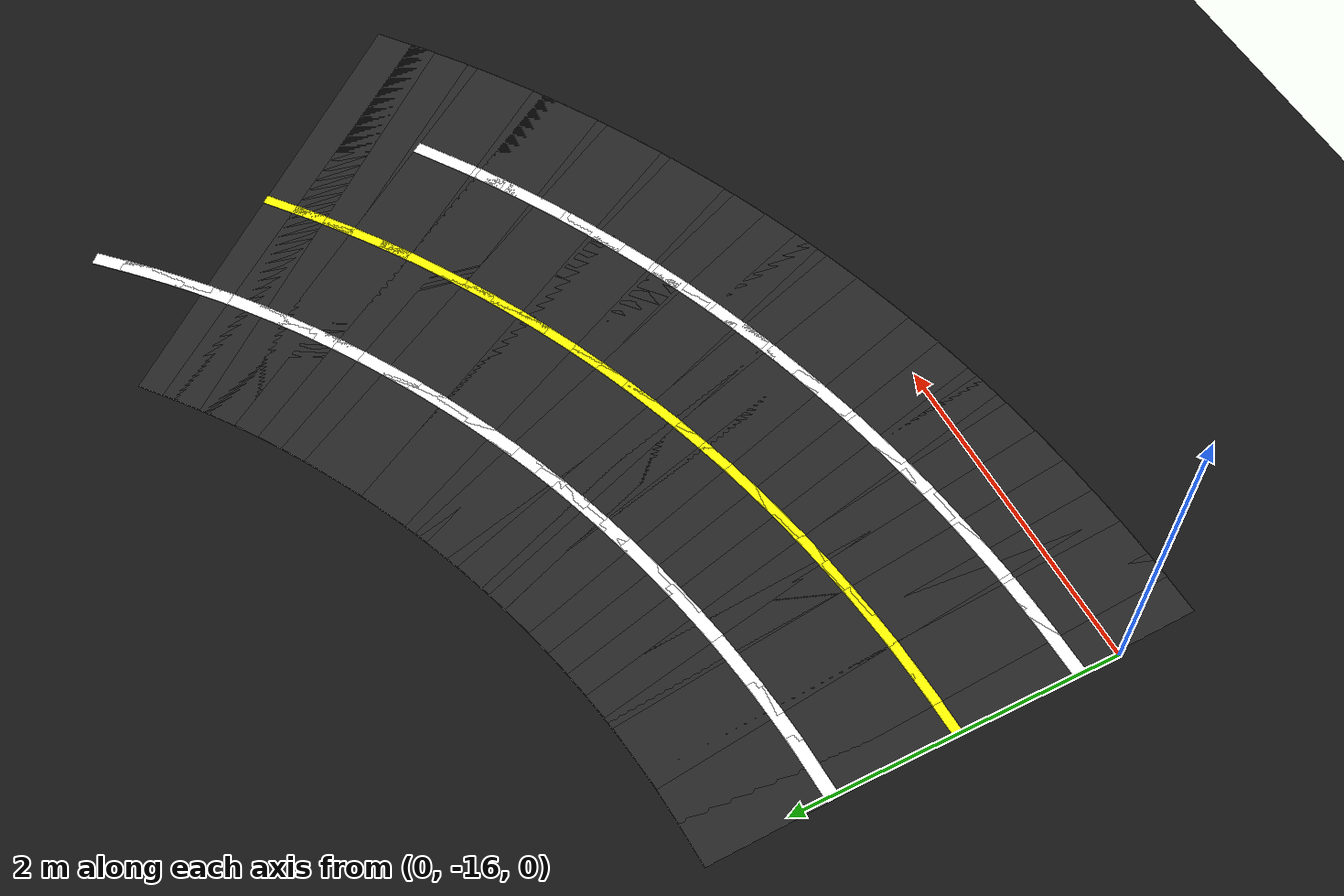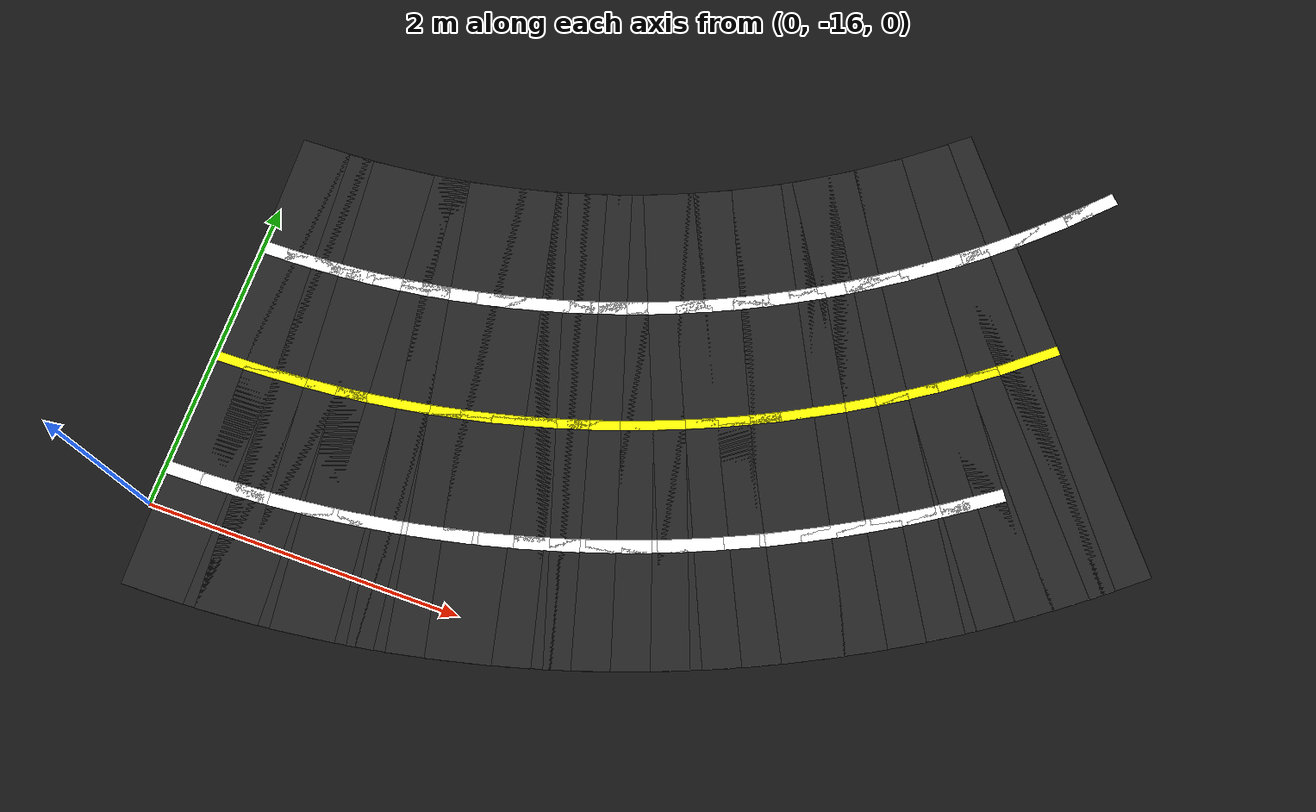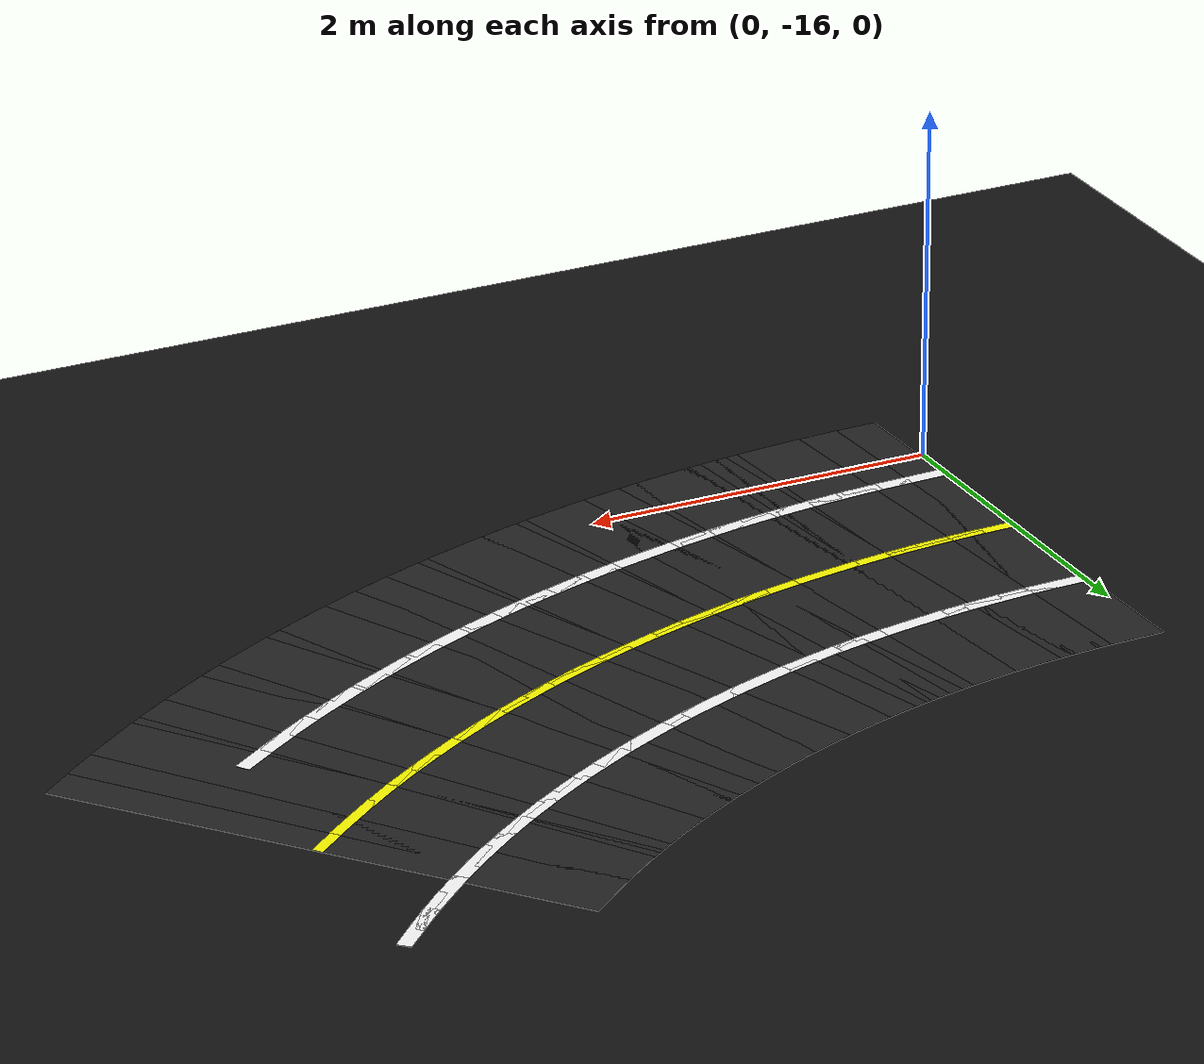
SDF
<sdf version="1.6">
 <world name="figure8_world">
  <model name="ground_plane">
   <static>true</static>
   <link name="link">
    <collision name="collision">
     <geometry><plane><normal>0 0 1</normal><size>120 120</size></plane></geometry>
    </collision>
    <visual name="visual">
     <geometry><plane><normal>0 0 1</normal><size>120 120</size></plane></geometry>
     <material><ambient>0.08 0.08 0.08 1</ambient><diffuse>0.08 0.08 0.08 1</diffuse></material>
    </visual>
   </link>
  </model>
  <model name="seg_00878">
   <static>true</static>
   <pose>4.7730 -12.2730 0.0030 0 0 -2.3562</pose>
   <link name="link">
    <collision name="collision"><geometry><box><size>0.4000 0.0800 0.002</size></box></geometry></collision>
    <visual name="visual">
     <geometry><box><size>0.4000 0.0800 0.002</size></box></geometry>
     <material><ambient>1 1 1 1</ambient><diffuse>1 1 1 1</diffuse></material>
    </visual>
   </link>
  </model>
  <model name="seg_00882">
   <static>true</static>
   <pose>4.6464 -12.3963 0.0030 0 0 -2.3824</pose>
   <link name="link">
    <collision name="collision"><geometry><box><size>0.4000 0.0800 0.002</size></box></geometry></collision>
    <visual name="visual">
     <geometry><box><size>0.4000 0.0800 0.002</size></box></geometry>
     <material><ambient>1 1 1 1</ambient><diffuse>1 1 1 1</diffuse></material>
    </visual>
   </link>
  </model>
  <model name="seg_00886">
   <static>true</static>
   <pose>4.5166 -12.5162 0.0030 0 0 -2.4086</pose>
   <link name="link">
    <collision name="collision"><geometry><box><size>0.4000 0.0800 0.002</size></box></geometry></collision>
    <visual name="visual">
     <geometry><box><size>0.4000 0.0800 0.002</size></box></geometry>
     <material><ambient>1 1 1 1</ambient><diffuse>1 1 1 1</diffuse></material>
    </visual>
   </link>
  </model>
  <model name="seg_00890">
   <static>true</static>
   <pose>4.3838 -12.6327 0.0030 0 0 -2.4347</pose>
   <link name="link">
    <collision name="collision"><geometry><box><size>0.4000 0.0800 0.002</size></box></geometry></collision>
    <visual name="visual">
     <geometry><box><size>0.4000 0.0800 0.002</size></box></geometry>
     <material><ambient>1 1 1 1</ambient><diffuse>1 1 1 1</diffuse></material>
    </visual>
   </link>
  </model>
  <model name="seg_00892">
   <static>true</static>
   <pose>4.7199 -13.3286 0.0010 0 0 -2.4609</pose>
   <link name="link">
    <collision name="collision"><geometry><box><size>0.4000 3.0000 0.002</size></box></geometry></collision>
    <visual name="visual">
     <geometry><box><size>0.4000 3.0000 0.002</size></box></geometry>
     <material><ambient>0.14 0.14 0.14 1</ambient><diffuse>0.14 0.14 0.14 1</diffuse></material>
    </visual>
   </link>
  </model>
  <model name="seg_00894">
   <static>true</static>
   <pose>4.2479 -12.7457 0.0030 0 0 -2.4609</pose>
   <link name="link">
    <collision name="collision"><geometry><box><size>0.4000 0.0800 0.002</size></box></geometry></collision>
    <visual name="visual">
     <geometry><box><size>0.4000 0.0800 0.002</size></box></geometry>
     <material><ambient>1 1 1 1</ambient><diffuse>1 1 1 1</diffuse></material>
    </visual>
   </link>
  </model>
  <model name="seg_00895">
   <static>true</static>
   <pose>4.7199 -13.3286 0.0030 0 0 -2.4609</pose>
   <link name="link">
    <collision name="collision"><geometry><box><size>0.4000 0.0600 0.002</size></box></geometry></collision>
    <visual name="visual">
     <geometry><box><size>0.4000 0.0600 0.002</size></box></geometry>
     <material><ambient>1 1 0 1</ambient><diffuse>1 1 0 1</diffuse></material>
    </visual>
   </link>
  </model>
  <model name="seg_00896">
   <static>true</static>
   <pose>4.5657 -13.4502 0.0010 0 0 -2.4871</pose>
   <link name="link">
    <collision name="collision"><geometry><box><size>0.4000 3.0000 0.002</size></box></geometry></collision>
    <visual name="visual">
     <geometry><box><size>0.4000 3.0000 0.002</size></box></geometry>
     <material><ambient>0.14 0.14 0.14 1</ambient><diffuse>0.14 0.14 0.14 1</diffuse></material>
    </visual>
   </link>
  </model>
  <model name="seg_00898">
   <static>true</static>
   <pose>4.1091 -12.8551 0.0030 0 0 -2.4871</pose>
   <link name="link">
    <collision name="collision"><geometry><box><size>0.4000 0.0800 0.002</size></box></geometry></collision>
    <visual name="visual">
     <geometry><box><size>0.4000 0.0800 0.002</size></box></geometry>
     <material><ambient>1 1 1 1</ambient><diffuse>1 1 1 1</diffuse></material>
    </visual>
   </link>
  </model>
  <model name="seg_00899">
   <static>true</static>
   <pose>4.5657 -13.4502 0.0030 0 0 -2.4871</pose>
   <link name="link">
    <collision name="collision"><geometry><box><size>0.4000 0.0600 0.002</size></box></geometry></collision>
    <visual name="visual">
     <geometry><box><size>0.4000 0.0600 0.002</size></box></geometry>
     <material><ambient>1 1 0 1</ambient><diffuse>1 1 0 1</diffuse></material>
    </visual>
   </link>
  </model>
  <model name="seg_00900">
   <static>true</static>
   <pose>4.4084 -13.5676 0.0010 0 0 -2.5133</pose>
   <link name="link">
    <collision name="collision"><geometry><box><size>0.4000 3.0000 0.002</size></box></geometry></collision>
    <visual name="visual">
     <geometry><box><size>0.4000 3.0000 0.002</size></box></geometry>
     <material><ambient>0.14 0.14 0.14 1</ambient><diffuse>0.14 0.14 0.14 1</diffuse></material>
    </visual>
   </link>
  </model>
  <model name="seg_00902">
   <static>true</static>
   <pose>3.9676 -12.9609 0.0030 0 0 -2.5133</pose>
   <link name="link">
    <collision name="collision"><geometry><box><size>0.4000 0.0800 0.002</size></box></geometry></collision>
    <visual name="visual">
     <geometry><box><size>0.4000 0.0800 0.002</size></box></geometry>
     <material><ambient>1 1 1 1</ambient><diffuse>1 1 1 1</diffuse></material>
    </visual>
   </link>
  </model>
  <model name="seg_00903">
   <static>true</static>
   <pose>4.4084 -13.5676 0.0030 0 0 -2.5133</pose>
   <link name="link">
    <collision name="collision"><geometry><box><size>0.4000 0.0600 0.002</size></box></geometry></collision>
    <visual name="visual">
     <geometry><box><size>0.4000 0.0600 0.002</size></box></geometry>
     <material><ambient>1 1 0 1</ambient><diffuse>1 1 0 1</diffuse></material>
    </visual>
   </link>
  </model>
  <model name="seg_00904">
   <static>true</static>
   <pose>4.2480 -13.6809 0.0010 0 0 -2.5395</pose>
   <link name="link">
    <collision name="collision"><geometry><box><size>0.4000 3.0000 0.002</size></box></geometry></collision>
    <visual name="visual">
     <geometry><box><size>0.4000 3.0000 0.002</size></box></geometry>
     <material><ambient>0.14 0.14 0.14 1</ambient><diffuse>0.14 0.14 0.14 1</diffuse></material>
    </visual>
   </link>
  </model>
  <model name="seg_00905">
   <static>true</static>
   <pose>4.6729 -14.2990 0.0030 0 0 -2.5395</pose>
   <link name="link">
    <collision name="collision"><geometry><box><size>0.4000 0.0800 0.002</size></box></geometry></collision>
    <visual name="visual">
     <geometry><box><size>0.4000 0.0800 0.002</size></box></geometry>
     <material><ambient>1 1 1 1</ambient><diffuse>1 1 1 1</diffuse></material>
    </visual>
   </link>
  </model>
  <model name="seg_00906">
   <static>true</static>
   <pose>3.8232 -13.0629 0.0030 0 0 -2.5395</pose>
   <link name="link">
    <collision name="collision"><geometry><box><size>0.4000 0.0800 0.002</size></box></geometry></collision>
    <visual name="visual">
     <geometry><box><size>0.4000 0.0800 0.002</size></box></geometry>
     <material><ambient>1 1 1 1</ambient><diffuse>1 1 1 1</diffuse></material>
    </visual>
   </link>
  </model>
  <model name="seg_00907">
   <static>true</static>
   <pose>4.2480 -13.6809 0.0030 0 0 -2.5395</pose>
   <link name="link">
    <collision name="collision"><geometry><box><size>0.4000 0.0600 0.002</size></box></geometry></collision>
    <visual name="visual">
     <geometry><box><size>0.4000 0.0600 0.002</size></box></geometry>
     <material><ambient>1 1 0 1</ambient><diffuse>1 1 0 1</diffuse></material>
    </visual>
   </link>
  </model>
  <model name="seg_00908">
   <static>true</static>
   <pose>4.0848 -13.7900 0.0010 0 0 -2.5656</pose>
   <link name="link">
    <collision name="collision"><geometry><box><size>0.4000 3.0000 0.002</size></box></geometry></collision>
    <visual name="visual">
     <geometry><box><size>0.4000 3.0000 0.002</size></box></geometry>
     <material><ambient>0.14 0.14 0.14 1</ambient><diffuse>0.14 0.14 0.14 1</diffuse></material>
    </visual>
   </link>
  </model>
  <model name="seg_00909">
   <static>true</static>
   <pose>4.4933 -14.4190 0.0030 0 0 -2.5656</pose>
   <link name="link">
    <collision name="collision"><geometry><box><size>0.4000 0.0800 0.002</size></box></geometry></collision>
    <visual name="visual">
     <geometry><box><size>0.4000 0.0800 0.002</size></box></geometry>
     <material><ambient>1 1 1 1</ambient><diffuse>1 1 1 1</diffuse></material>
    </visual>
   </link>
  </model>
  <model name="seg_00910">
   <static>true</static>
   <pose>3.6763 -13.1610 0.0030 0 0 -2.5656</pose>
   <link name="link">
    <collision name="collision"><geometry><box><size>0.4000 0.0800 0.002</size></box></geometry></collision>
    <visual name="visual">
     <geometry><box><size>0.4000 0.0800 0.002</size></box></geometry>
     <material><ambient>1 1 1 1</ambient><diffuse>1 1 1 1</diffuse></material>
    </visual>
   </link>
  </model>
  <model name="seg_00911">
   <static>true</static>
   <pose>4.0848 -13.7900 0.0030 0 0 -2.5656</pose>
   <link name="link">
    <collision name="collision"><geometry><box><size>0.4000 0.0600 0.002</size></box></geometry></collision>
    <visual name="visual">
     <geometry><box><size>0.4000 0.0600 0.002</size></box></geometry>
     <material><ambient>1 1 0 1</ambient><diffuse>1 1 0 1</diffuse></material>
    </visual>
   </link>
  </model>
  <model name="seg_00912">
   <static>true</static>
   <pose>3.9187 -13.8948 0.0010 0 0 -2.5918</pose>
   <link name="link">
    <collision name="collision"><geometry><box><size>0.4000 3.0000 0.002</size></box></geometry></collision>
    <visual name="visual">
     <geometry><box><size>0.4000 3.0000 0.002</size></box></geometry>
     <material><ambient>0.14 0.14 0.14 1</ambient><diffuse>0.14 0.14 0.14 1</diffuse></material>
    </visual>
   </link>
  </model>
  <model name="seg_00913">
   <static>true</static>
   <pose>4.3106 -14.5343 0.0030 0 0 -2.5918</pose>
   <link name="link">
    <collision name="collision"><geometry><box><size>0.4000 0.0800 0.002</size></box></geometry></collision>
    <visual name="visual">
     <geometry><box><size>0.4000 0.0800 0.002</size></box></geometry>
     <material><ambient>1 1 1 1</ambient><diffuse>1 1 1 1</diffuse></material>
    </visual>
   </link>
  </model>
  <model name="seg_00914">
   <static>true</static>
   <pose>3.5269 -13.2553 0.0030 0 0 -2.5918</pose>
   <link name="link">
    <collision name="collision"><geometry><box><size>0.4000 0.0800 0.002</size></box></geometry></collision>
    <visual name="visual">
     <geometry><box><size>0.4000 0.0800 0.002</size></box></geometry>
     <material><ambient>1 1 1 1</ambient><diffuse>1 1 1 1</diffuse></material>
    </visual>
   </link>
  </model>
  <model name="seg_00915">
   <static>true</static>
   <pose>3.9187 -13.8948 0.0030 0 0 -2.5918</pose>
   <link name="link">
    <collision name="collision"><geometry><box><size>0.4000 0.0600 0.002</size></box></geometry></collision>
    <visual name="visual">
     <geometry><box><size>0.4000 0.0600 0.002</size></box></geometry>
     <material><ambient>1 1 0 1</ambient><diffuse>1 1 0 1</diffuse></material>
    </visual>
   </link>
  </model>
  <model name="seg_00916">
   <static>true</static>
   <pose>3.7500 -13.9952 0.0010 0 0 -2.6180</pose>
   <link name="link">
    <collision name="collision"><geometry><box><size>0.4000 3.0000 0.002</size></box></geometry></collision>
    <visual name="visual">
     <geometry><box><size>0.4000 3.0000 0.002</size></box></geometry>
     <material><ambient>0.14 0.14 0.14 1</ambient><diffuse>0.14 0.14 0.14 1</diffuse></material>
    </visual>
   </link>
  </model>
  <model name="seg_00917">
   <static>true</static>
   <pose>4.1250 -14.6447 0.0030 0 0 -2.6180</pose>
   <link name="link">
    <collision name="collision"><geometry><box><size>0.4000 0.0800 0.002</size></box></geometry></collision>
    <visual name="visual">
     <geometry><box><size>0.4000 0.0800 0.002</size></box></geometry>
     <material><ambient>1 1 1 1</ambient><diffuse>1 1 1 1</diffuse></material>
    </visual>
   </link>
  </model>
  <model name="seg_00918">
   <static>true</static>
   <pose>3.3750 -13.3457 0.0030 0 0 -2.6180</pose>
   <link name="link">
    <collision name="collision"><geometry><box><size>0.4000 0.0800 0.002</size></box></geometry></collision>
    <visual name="visual">
     <geometry><box><size>0.4000 0.0800 0.002</size></box></geometry>
     <material><ambient>1 1 1 1</ambient><diffuse>1 1 1 1</diffuse></material>
    </visual>
   </link>
  </model>
  <model name="seg_00919">
   <static>true</static>
   <pose>3.7500 -13.9952 0.0030 0 0 -2.6180</pose>
   <link name="link">
    <collision name="collision"><geometry><box><size>0.4000 0.0600 0.002</size></box></geometry></collision>
    <visual name="visual">
     <geometry><box><size>0.4000 0.0600 0.002</size></box></geometry>
     <material><ambient>1 1 0 1</ambient><diffuse>1 1 0 1</diffuse></material>
    </visual>
   </link>
  </model>
  <model name="seg_00920">
   <static>true</static>
   <pose>3.5787 -14.0911 0.0010 0 0 -2.6442</pose>
   <link name="link">
    <collision name="collision"><geometry><box><size>0.4000 3.0000 0.002</size></box></geometry></collision>
    <visual name="visual">
     <geometry><box><size>0.4000 3.0000 0.002</size></box></geometry>
     <material><ambient>0.14 0.14 0.14 1</ambient><diffuse>0.14 0.14 0.14 1</diffuse></material>
    </visual>
   </link>
  </model>
  <model name="seg_00921">
   <static>true</static>
   <pose>3.9366 -14.7502 0.0030 0 0 -2.6442</pose>
   <link name="link">
    <collision name="collision"><geometry><box><size>0.4000 0.0800 0.002</size></box></geometry></collision>
    <visual name="visual">
     <geometry><box><size>0.4000 0.0800 0.002</size></box></geometry>
     <material><ambient>1 1 1 1</ambient><diffuse>1 1 1 1</diffuse></material>
    </visual>
   </link>
  </model>
  <model name="seg_00922">
   <static>true</static>
   <pose>3.2208 -13.4320 0.0030 0 0 -2.6442</pose>
   <link name="link">
    <collision name="collision"><geometry><box><size>0.4000 0.0800 0.002</size></box></geometry></collision>
    <visual name="visual">
     <geometry><box><size>0.4000 0.0800 0.002</size></box></geometry>
     <material><ambient>1 1 1 1</ambient><diffuse>1 1 1 1</diffuse></material>
    </visual>
   </link>
  </model>
  <model name="seg_00923">
   <static>true</static>
   <pose>3.5787 -14.0911 0.0030 0 0 -2.6442</pose>
   <link name="link">
    <collision name="collision"><geometry><box><size>0.4000 0.0600 0.002</size></box></geometry></collision>
    <visual name="visual">
     <geometry><box><size>0.4000 0.0600 0.002</size></box></geometry>
     <material><ambient>1 1 0 1</ambient><diffuse>1 1 0 1</diffuse></material>
    </visual>
   </link>
  </model>
  <model name="seg_00924">
   <static>true</static>
   <pose>3.4049 -14.1825 0.0010 0 0 -2.6704</pose>
   <link name="link">
    <collision name="collision"><geometry><box><size>0.4000 3.0000 0.002</size></box></geometry></collision>
    <visual name="visual">
     <geometry><box><size>0.4000 3.0000 0.002</size></box></geometry>
     <material><ambient>0.14 0.14 0.14 1</ambient><diffuse>0.14 0.14 0.14 1</diffuse></material>
    </visual>
   </link>
  </model>
  <model name="seg_00925">
   <static>true</static>
   <pose>3.7454 -14.8508 0.0030 0 0 -2.6704</pose>
   <link name="link">
    <collision name="collision"><geometry><box><size>0.4000 0.0800 0.002</size></box></geometry></collision>
    <visual name="visual">
     <geometry><box><size>0.4000 0.0800 0.002</size></box></geometry>
     <material><ambient>1 1 1 1</ambient><diffuse>1 1 1 1</diffuse></material>
    </visual>
   </link>
  </model>
  <model name="seg_00926">
   <static>true</static>
   <pose>3.0644 -13.5143 0.0030 0 0 -2.6704</pose>
   <link name="link">
    <collision name="collision"><geometry><box><size>0.4000 0.0800 0.002</size></box></geometry></collision>
    <visual name="visual">
     <geometry><box><size>0.4000 0.0800 0.002</size></box></geometry>
     <material><ambient>1 1 1 1</ambient><diffuse>1 1 1 1</diffuse></material>
    </visual>
   </link>
  </model>
  <model name="seg_00927">
   <static>true</static>
   <pose>3.4049 -14.1825 0.0030 0 0 -2.6704</pose>
   <link name="link">
    <collision name="collision"><geometry><box><size>0.4000 0.0600 0.002</size></box></geometry></collision>
    <visual name="visual">
     <geometry><box><size>0.4000 0.0600 0.002</size></box></geometry>
     <material><ambient>1 1 0 1</ambient><diffuse>1 1 0 1</diffuse></material>
    </visual>
   </link>
  </model>
  <model name="seg_00928">
   <static>true</static>
   <pose>3.2288 -14.2694 0.0010 0 0 -2.6965</pose>
   <link name="link">
    <collision name="collision"><geometry><box><size>0.4000 3.0000 0.002</size></box></geometry></collision>
    <visual name="visual">
     <geometry><box><size>0.4000 3.0000 0.002</size></box></geometry>
     <material><ambient>0.14 0.14 0.14 1</ambient><diffuse>0.14 0.14 0.14 1</diffuse></material>
    </visual>
   </link>
  </model>
  <model name="seg_00929">
   <static>true</static>
   <pose>3.5517 -14.9463 0.0030 0 0 -2.6965</pose>
   <link name="link">
    <collision name="collision"><geometry><box><size>0.4000 0.0800 0.002</size></box></geometry></collision>
    <visual name="visual">
     <geometry><box><size>0.4000 0.0800 0.002</size></box></geometry>
     <material><ambient>1 1 1 1</ambient><diffuse>1 1 1 1</diffuse></material>
    </visual>
   </link>
  </model>
  <model name="seg_00930">
   <static>true</static>
   <pose>2.9059 -13.5925 0.0030 0 0 -2.6965</pose>
   <link name="link">
    <collision name="collision"><geometry><box><size>0.4000 0.0800 0.002</size></box></geometry></collision>
    <visual name="visual">
     <geometry><box><size>0.4000 0.0800 0.002</size></box></geometry>
     <material><ambient>1 1 1 1</ambient><diffuse>1 1 1 1</diffuse></material>
    </visual>
   </link>
  </model>
  <model name="seg_00931">
   <static>true</static>
   <pose>3.2288 -14.2694 0.0030 0 0 -2.6965</pose>
   <link name="link">
    <collision name="collision"><geometry><box><size>0.4000 0.0600 0.002</size></box></geometry></collision>
    <visual name="visual">
     <geometry><box><size>0.4000 0.0600 0.002</size></box></geometry>
     <material><ambient>1 1 0 1</ambient><diffuse>1 1 0 1</diffuse></material>
    </visual>
   </link>
  </model>
  <model name="seg_00932">
   <static>true</static>
   <pose>3.0505 -14.3516 0.0010 0 0 -2.7227</pose>
   <link name="link">
    <collision name="collision"><geometry><box><size>0.4000 3.0000 0.002</size></box></geometry></collision>
    <visual name="visual">
     <geometry><box><size>0.4000 3.0000 0.002</size></box></geometry>
     <material><ambient>0.14 0.14 0.14 1</ambient><diffuse>0.14 0.14 0.14 1</diffuse></material>
    </visual>
   </link>
  </model>
  <model name="seg_00933">
   <static>true</static>
   <pose>3.3556 -15.0368 0.0030 0 0 -2.7227</pose>
   <link name="link">
    <collision name="collision"><geometry><box><size>0.4000 0.0800 0.002</size></box></geometry></collision>
    <visual name="visual">
     <geometry><box><size>0.4000 0.0800 0.002</size></box></geometry>
     <material><ambient>1 1 1 1</ambient><diffuse>1 1 1 1</diffuse></material>
    </visual>
   </link>
  </model>
  <model name="seg_00934">
   <static>true</static>
   <pose>2.7455 -13.6664 0.0030 0 0 -2.7227</pose>
   <link name="link">
    <collision name="collision"><geometry><box><size>0.4000 0.0800 0.002</size></box></geometry></collision>
    <visual name="visual">
     <geometry><box><size>0.4000 0.0800 0.002</size></box></geometry>
     <material><ambient>1 1 1 1</ambient><diffuse>1 1 1 1</diffuse></material>
    </visual>
   </link>
  </model>
  <model name="seg_00935">
   <static>true</static>
   <pose>3.0505 -14.3516 0.0030 0 0 -2.7227</pose>
   <link name="link">
    <collision name="collision"><geometry><box><size>0.4000 0.0600 0.002</size></box></geometry></collision>
    <visual name="visual">
     <geometry><box><size>0.4000 0.0600 0.002</size></box></geometry>
     <material><ambient>1 1 0 1</ambient><diffuse>1 1 0 1</diffuse></material>
    </visual>
   </link>
  </model>
  <model name="seg_00936">
   <static>true</static>
   <pose>2.8701 -14.4291 0.0010 0 0 -2.7489</pose>
   <link name="link">
    <collision name="collision"><geometry><box><size>0.4000 3.0000 0.002</size></box></geometry></collision>
    <visual name="visual">
     <geometry><box><size>0.4000 3.0000 0.002</size></box></geometry>
     <material><ambient>0.14 0.14 0.14 1</ambient><diffuse>0.14 0.14 0.14 1</diffuse></material>
    </visual>
   </link>
  </model>
  <model name="seg_00937">
   <static>true</static>
   <pose>3.1571 -15.1220 0.0030 0 0 -2.7489</pose>
   <link name="link">
    <collision name="collision"><geometry><box><size>0.4000 0.0800 0.002</size></box></geometry></collision>
    <visual name="visual">
     <geometry><box><size>0.4000 0.0800 0.002</size></box></geometry>
     <material><ambient>1 1 1 1</ambient><diffuse>1 1 1 1</diffuse></material>
    </visual>
   </link>
  </model>
  <model name="seg_00938">
   <static>true</static>
   <pose>2.5831 -13.7362 0.0030 0 0 -2.7489</pose>
   <link name="link">
    <collision name="collision"><geometry><box><size>0.4000 0.0800 0.002</size></box></geometry></collision>
    <visual name="visual">
     <geometry><box><size>0.4000 0.0800 0.002</size></box></geometry>
     <material><ambient>1 1 1 1</ambient><diffuse>1 1 1 1</diffuse></material>
    </visual>
   </link>
  </model>
  <model name="seg_00939">
   <static>true</static>
   <pose>2.8701 -14.4291 0.0030 0 0 -2.7489</pose>
   <link name="link">
    <collision name="collision"><geometry><box><size>0.4000 0.0600 0.002</size></box></geometry></collision>
    <visual name="visual">
     <geometry><box><size>0.4000 0.0600 0.002</size></box></geometry>
     <material><ambient>1 1 0 1</ambient><diffuse>1 1 0 1</diffuse></material>
    </visual>
   </link>
  </model>
  <model name="seg_00940">
   <static>true</static>
   <pose>2.6878 -14.5019 0.0010 0 0 -2.7751</pose>
   <link name="link">
    <collision name="collision"><geometry><box><size>0.4000 3.0000 0.002</size></box></geometry></collision>
    <visual name="visual">
     <geometry><box><size>0.4000 3.0000 0.002</size></box></geometry>
     <material><ambient>0.14 0.14 0.14 1</ambient><diffuse>0.14 0.14 0.14 1</diffuse></material>
    </visual>
   </link>
  </model>
  <model name="seg_00941">
   <static>true</static>
   <pose>2.9565 -15.2020 0.0030 0 0 -2.7751</pose>
   <link name="link">
    <collision name="collision"><geometry><box><size>0.4000 0.0800 0.002</size></box></geometry></collision>
    <visual name="visual">
     <geometry><box><size>0.4000 0.0800 0.002</size></box></geometry>
     <material><ambient>1 1 1 1</ambient><diffuse>1 1 1 1</diffuse></material>
    </visual>
   </link>
  </model>
  <model name="seg_00942">
   <static>true</static>
   <pose>2.4190 -13.8017 0.0030 0 0 -2.7751</pose>
   <link name="link">
    <collision name="collision"><geometry><box><size>0.4000 0.0800 0.002</size></box></geometry></collision>
    <visual name="visual">
     <geometry><box><size>0.4000 0.0800 0.002</size></box></geometry>
     <material><ambient>1 1 1 1</ambient><diffuse>1 1 1 1</diffuse></material>
    </visual>
   </link>
  </model>
  <model name="seg_00943">
   <static>true</static>
   <pose>2.6878 -14.5019 0.0030 0 0 -2.7751</pose>
   <link name="link">
    <collision name="collision"><geometry><box><size>0.4000 0.0600 0.002</size></box></geometry></collision>
    <visual name="visual">
     <geometry><box><size>0.4000 0.0600 0.002</size></box></geometry>
     <material><ambient>1 1 0 1</ambient><diffuse>1 1 0 1</diffuse></material>
    </visual>
   </link>
  </model>
  <model name="seg_00944">
   <static>true</static>
   <pose>2.5036 -14.5698 0.0010 0 0 -2.8013</pose>
   <link name="link">
    <collision name="collision"><geometry><box><size>0.4000 3.0000 0.002</size></box></geometry></collision>
    <visual name="visual">
     <geometry><box><size>0.4000 3.0000 0.002</size></box></geometry>
     <material><ambient>0.14 0.14 0.14 1</ambient><diffuse>0.14 0.14 0.14 1</diffuse></material>
    </visual>
   </link>
  </model>
  <model name="seg_00945">
   <static>true</static>
   <pose>2.7539 -15.2768 0.0030 0 0 -2.8013</pose>
   <link name="link">
    <collision name="collision"><geometry><box><size>0.4000 0.0800 0.002</size></box></geometry></collision>
    <visual name="visual">
     <geometry><box><size>0.4000 0.0800 0.002</size></box></geometry>
     <material><ambient>1 1 1 1</ambient><diffuse>1 1 1 1</diffuse></material>
    </visual>
   </link>
  </model>
  <model name="seg_00946">
   <static>true</static>
   <pose>2.2532 -13.8628 0.0030 0 0 -2.8013</pose>
   <link name="link">
    <collision name="collision"><geometry><box><size>0.4000 0.0800 0.002</size></box></geometry></collision>
    <visual name="visual">
     <geometry><box><size>0.4000 0.0800 0.002</size></box></geometry>
     <material><ambient>1 1 1 1</ambient><diffuse>1 1 1 1</diffuse></material>
    </visual>
   </link>
  </model>
  <model name="seg_00947">
   <static>true</static>
   <pose>2.5036 -14.5698 0.0030 0 0 -2.8013</pose>
   <link name="link">
    <collision name="collision"><geometry><box><size>0.4000 0.0600 0.002</size></box></geometry></collision>
    <visual name="visual">
     <geometry><box><size>0.4000 0.0600 0.002</size></box></geometry>
     <material><ambient>1 1 0 1</ambient><diffuse>1 1 0 1</diffuse></material>
    </visual>
   </link>
  </model>
  <model name="seg_00948">
   <static>true</static>
   <pose>2.3176 -14.6329 0.0010 0 0 -2.8274</pose>
   <link name="link">
    <collision name="collision"><geometry><box><size>0.4000 3.0000 0.002</size></box></geometry></collision>
    <visual name="visual">
     <geometry><box><size>0.4000 3.0000 0.002</size></box></geometry>
     <material><ambient>0.14 0.14 0.14 1</ambient><diffuse>0.14 0.14 0.14 1</diffuse></material>
    </visual>
   </link>
  </model>
  <model name="seg_00949">
   <static>true</static>
   <pose>2.5494 -15.3462 0.0030 0 0 -2.8274</pose>
   <link name="link">
    <collision name="collision"><geometry><box><size>0.4000 0.0800 0.002</size></box></geometry></collision>
    <visual name="visual">
     <geometry><box><size>0.4000 0.0800 0.002</size></box></geometry>
     <material><ambient>1 1 1 1</ambient><diffuse>1 1 1 1</diffuse></material>
    </visual>
   </link>
  </model>
  <model name="seg_00950">
   <static>true</static>
   <pose>2.0859 -13.9196 0.0030 0 0 -2.8274</pose>
   <link name="link">
    <collision name="collision"><geometry><box><size>0.4000 0.0800 0.002</size></box></geometry></collision>
    <visual name="visual">
     <geometry><box><size>0.4000 0.0800 0.002</size></box></geometry>
     <material><ambient>1 1 1 1</ambient><diffuse>1 1 1 1</diffuse></material>
    </visual>
   </link>
  </model>
  <model name="seg_00951">
   <static>true</static>
   <pose>2.3176 -14.6329 0.0030 0 0 -2.8274</pose>
   <link name="link">
    <collision name="collision"><geometry><box><size>0.4000 0.0600 0.002</size></box></geometry></collision>
    <visual name="visual">
     <geometry><box><size>0.4000 0.0600 0.002</size></box></geometry>
     <material><ambient>1 1 0 1</ambient><diffuse>1 1 0 1</diffuse></material>
    </visual>
   </link>
  </model>
  <model name="seg_00952">
   <static>true</static>
   <pose>2.1301 -14.6911 0.0010 0 0 -2.8536</pose>
   <link name="link">
    <collision name="collision"><geometry><box><size>0.4000 3.0000 0.002</size></box></geometry></collision>
    <visual name="visual">
     <geometry><box><size>0.4000 3.0000 0.002</size></box></geometry>
     <material><ambient>0.14 0.14 0.14 1</ambient><diffuse>0.14 0.14 0.14 1</diffuse></material>
    </visual>
   </link>
  </model>
  <model name="seg_00953">
   <static>true</static>
   <pose>2.3431 -15.4103 0.0030 0 0 -2.8536</pose>
   <link name="link">
    <collision name="collision"><geometry><box><size>0.4000 0.0800 0.002</size></box></geometry></collision>
    <visual name="visual">
     <geometry><box><size>0.4000 0.0800 0.002</size></box></geometry>
     <material><ambient>1 1 1 1</ambient><diffuse>1 1 1 1</diffuse></material>
    </visual>
   </link>
  </model>
  <model name="seg_00954">
   <static>true</static>
   <pose>1.9171 -13.9720 0.0030 0 0 -2.8536</pose>
   <link name="link">
    <collision name="collision"><geometry><box><size>0.4000 0.0800 0.002</size></box></geometry></collision>
    <visual name="visual">
     <geometry><box><size>0.4000 0.0800 0.002</size></box></geometry>
     <material><ambient>1 1 1 1</ambient><diffuse>1 1 1 1</diffuse></material>
    </visual>
   </link>
  </model>
  <model name="seg_00955">
   <static>true</static>
   <pose>2.1301 -14.6911 0.0030 0 0 -2.8536</pose>
   <link name="link">
    <collision name="collision"><geometry><box><size>0.4000 0.0600 0.002</size></box></geometry></collision>
    <visual name="visual">
     <geometry><box><size>0.4000 0.0600 0.002</size></box></geometry>
     <material><ambient>1 1 0 1</ambient><diffuse>1 1 0 1</diffuse></material>
    </visual>
   </link>
  </model>
  <model name="seg_00956">
   <static>true</static>
   <pose>1.9411 -14.7444 0.0010 0 0 -2.8798</pose>
   <link name="link">
    <collision name="collision"><geometry><box><size>0.4000 3.0000 0.002</size></box></geometry></collision>
    <visual name="visual">
     <geometry><box><size>0.4000 3.0000 0.002</size></box></geometry>
     <material><ambient>0.14 0.14 0.14 1</ambient><diffuse>0.14 0.14 0.14 1</diffuse></material>
    </visual>
   </link>
  </model>
  <model name="seg_00957">
   <static>true</static>
   <pose>2.1353 -15.4689 0.0030 0 0 -2.8798</pose>
   <link name="link">
    <collision name="collision"><geometry><box><size>0.4000 0.0800 0.002</size></box></geometry></collision>
    <visual name="visual">
     <geometry><box><size>0.4000 0.0800 0.002</size></box></geometry>
     <material><ambient>1 1 1 1</ambient><diffuse>1 1 1 1</diffuse></material>
    </visual>
   </link>
  </model>
  <model name="seg_00958">
   <static>true</static>
   <pose>1.7470 -14.0200 0.0030 0 0 -2.8798</pose>
   <link name="link">
    <collision name="collision"><geometry><box><size>0.4000 0.0800 0.002</size></box></geometry></collision>
    <visual name="visual">
     <geometry><box><size>0.4000 0.0800 0.002</size></box></geometry>
     <material><ambient>1 1 1 1</ambient><diffuse>1 1 1 1</diffuse></material>
    </visual>
   </link>
  </model>
  <model name="seg_00959">
   <static>true</static>
   <pose>1.9411 -14.7444 0.0030 0 0 -2.8798</pose>
   <link name="link">
    <collision name="collision"><geometry><box><size>0.4000 0.0600 0.002</size></box></geometry></collision>
    <visual name="visual">
     <geometry><box><size>0.4000 0.0600 0.002</size></box></geometry>
     <material><ambient>1 1 0 1</ambient><diffuse>1 1 0 1</diffuse></material>
    </visual>
   </link>
  </model>
  <model name="seg_00960">
   <static>true</static>
   <pose>1.7508 -14.7928 0.0010 0 0 -2.9060</pose>
   <link name="link">
    <collision name="collision"><geometry><box><size>0.4000 3.0000 0.002</size></box></geometry></collision>
    <visual name="visual">
     <geometry><box><size>0.4000 3.0000 0.002</size></box></geometry>
     <material><ambient>0.14 0.14 0.14 1</ambient><diffuse>0.14 0.14 0.14 1</diffuse></material>
    </visual>
   </link>
  </model>
  <model name="seg_00961">
   <static>true</static>
   <pose>1.9259 -15.5221 0.0030 0 0 -2.9060</pose>
   <link name="link">
    <collision name="collision"><geometry><box><size>0.4000 0.0800 0.002</size></box></geometry></collision>
    <visual name="visual">
     <geometry><box><size>0.4000 0.0800 0.002</size></box></geometry>
     <material><ambient>1 1 1 1</ambient><diffuse>1 1 1 1</diffuse></material>
    </visual>
   </link>
  </model>
  <model name="seg_00962">
   <static>true</static>
   <pose>1.5758 -14.0635 0.0030 0 0 -2.9060</pose>
   <link name="link">
    <collision name="collision"><geometry><box><size>0.4000 0.0800 0.002</size></box></geometry></collision>
    <visual name="visual">
     <geometry><box><size>0.4000 0.0800 0.002</size></box></geometry>
     <material><ambient>1 1 1 1</ambient><diffuse>1 1 1 1</diffuse></material>
    </visual>
   </link>
  </model>
  <model name="seg_00963">
   <static>true</static>
   <pose>1.7508 -14.7928 0.0030 0 0 -2.9060</pose>
   <link name="link">
    <collision name="collision"><geometry><box><size>0.4000 0.0600 0.002</size></box></geometry></collision>
    <visual name="visual">
     <geometry><box><size>0.4000 0.0600 0.002</size></box></geometry>
     <material><ambient>1 1 0 1</ambient><diffuse>1 1 0 1</diffuse></material>
    </visual>
   </link>
  </model>
  <model name="seg_00964">
   <static>true</static>
   <pose>1.5593 -14.8361 0.0010 0 0 -2.9322</pose>
   <link name="link">
    <collision name="collision"><geometry><box><size>0.4000 3.0000 0.002</size></box></geometry></collision>
    <visual name="visual">
     <geometry><box><size>0.4000 3.0000 0.002</size></box></geometry>
     <material><ambient>0.14 0.14 0.14 1</ambient><diffuse>0.14 0.14 0.14 1</diffuse></material>
    </visual>
   </link>
  </model>
  <model name="seg_00965">
   <static>true</static>
   <pose>1.7153 -15.5697 0.0030 0 0 -2.9322</pose>
   <link name="link">
    <collision name="collision"><geometry><box><size>0.4000 0.0800 0.002</size></box></geometry></collision>
    <visual name="visual">
     <geometry><box><size>0.4000 0.0800 0.002</size></box></geometry>
     <material><ambient>1 1 1 1</ambient><diffuse>1 1 1 1</diffuse></material>
    </visual>
   </link>
  </model>
  <model name="seg_00966">
   <static>true</static>
   <pose>1.4034 -14.1025 0.0030 0 0 -2.9322</pose>
   <link name="link">
    <collision name="collision"><geometry><box><size>0.4000 0.0800 0.002</size></box></geometry></collision>
    <visual name="visual">
     <geometry><box><size>0.4000 0.0800 0.002</size></box></geometry>
     <material><ambient>1 1 1 1</ambient><diffuse>1 1 1 1</diffuse></material>
    </visual>
   </link>
  </model>
  <model name="seg_00967">
   <static>true</static>
   <pose>1.5593 -14.8361 0.0030 0 0 -2.9322</pose>
   <link name="link">
    <collision name="collision"><geometry><box><size>0.4000 0.0600 0.002</size></box></geometry></collision>
    <visual name="visual">
     <geometry><box><size>0.4000 0.0600 0.002</size></box></geometry>
     <material><ambient>1 1 0 1</ambient><diffuse>1 1 0 1</diffuse></material>
    </visual>
   </link>
  </model>
  <model name="seg_00968">
   <static>true</static>
   <pose>1.3668 -14.8744 0.0010 0 0 -2.9583</pose>
   <link name="link">
    <collision name="collision"><geometry><box><size>0.4000 3.0000 0.002</size></box></geometry></collision>
    <visual name="visual">
     <geometry><box><size>0.4000 3.0000 0.002</size></box></geometry>
     <material><ambient>0.14 0.14 0.14 1</ambient><diffuse>0.14 0.14 0.14 1</diffuse></material>
    </visual>
   </link>
  </model>
  <model name="seg_00969">
   <static>true</static>
   <pose>1.5034 -15.6119 0.0030 0 0 -2.9583</pose>
   <link name="link">
    <collision name="collision"><geometry><box><size>0.4000 0.0800 0.002</size></box></geometry></collision>
    <visual name="visual">
     <geometry><box><size>0.4000 0.0800 0.002</size></box></geometry>
     <material><ambient>1 1 1 1</ambient><diffuse>1 1 1 1</diffuse></material>
    </visual>
   </link>
  </model>
  <model name="seg_00970">
   <static>true</static>
   <pose>1.2301 -14.1370 0.0030 0 0 -2.9583</pose>
   <link name="link">
    <collision name="collision"><geometry><box><size>0.4000 0.0800 0.002</size></box></geometry></collision>
    <visual name="visual">
     <geometry><box><size>0.4000 0.0800 0.002</size></box></geometry>
     <material><ambient>1 1 1 1</ambient><diffuse>1 1 1 1</diffuse></material>
    </visual>
   </link>
  </model>
  <model name="seg_00971">
   <static>true</static>
   <pose>1.3668 -14.8744 0.0030 0 0 -2.9583</pose>
   <link name="link">
    <collision name="collision"><geometry><box><size>0.4000 0.0600 0.002</size></box></geometry></collision>
    <visual name="visual">
     <geometry><box><size>0.4000 0.0600 0.002</size></box></geometry>
     <material><ambient>1 1 0 1</ambient><diffuse>1 1 0 1</diffuse></material>
    </visual>
   </link>
  </model>
  <model name="seg_00972">
   <static>true</static>
   <pose>1.1733 -14.9077 0.0010 0 0 -2.9845</pose>
   <link name="link">
    <collision name="collision"><geometry><box><size>0.4000 3.0000 0.002</size></box></geometry></collision>
    <visual name="visual">
     <geometry><box><size>0.4000 3.0000 0.002</size></box></geometry>
     <material><ambient>0.14 0.14 0.14 1</ambient><diffuse>0.14 0.14 0.14 1</diffuse></material>
    </visual>
   </link>
  </model>
  <model name="seg_00973">
   <static>true</static>
   <pose>1.2906 -15.6484 0.0030 0 0 -2.9845</pose>
   <link name="link">
    <collision name="collision"><geometry><box><size>0.4000 0.0800 0.002</size></box></geometry></collision>
    <visual name="visual">
     <geometry><box><size>0.4000 0.0800 0.002</size></box></geometry>
     <material><ambient>1 1 1 1</ambient><diffuse>1 1 1 1</diffuse></material>
    </visual>
   </link>
  </model>
  <model name="seg_00974">
   <static>true</static>
   <pose>1.0559 -14.1669 0.0030 0 0 -2.9845</pose>
   <link name="link">
    <collision name="collision"><geometry><box><size>0.4000 0.0800 0.002</size></box></geometry></collision>
    <visual name="visual">
     <geometry><box><size>0.4000 0.0800 0.002</size></box></geometry>
     <material><ambient>1 1 1 1</ambient><diffuse>1 1 1 1</diffuse></material>
    </visual>
   </link>
  </model>
  <model name="seg_00975">
   <static>true</static>
   <pose>1.1733 -14.9077 0.0030 0 0 -2.9845</pose>
   <link name="link">
    <collision name="collision"><geometry><box><size>0.4000 0.0600 0.002</size></box></geometry></collision>
    <visual name="visual">
     <geometry><box><size>0.4000 0.0600 0.002</size></box></geometry>
     <material><ambient>1 1 0 1</ambient><diffuse>1 1 0 1</diffuse></material>
    </visual>
   </link>
  </model>
  <model name="seg_00976">
   <static>true</static>
   <pose>0.9789 -14.9358 0.0010 0 0 -3.0107</pose>
   <link name="link">
    <collision name="collision"><geometry><box><size>0.4000 3.0000 0.002</size></box></geometry></collision>
    <visual name="visual">
     <geometry><box><size>0.4000 3.0000 0.002</size></box></geometry>
     <material><ambient>0.14 0.14 0.14 1</ambient><diffuse>0.14 0.14 0.14 1</diffuse></material>
    </visual>
   </link>
  </model>
  <model name="seg_00977">
   <static>true</static>
   <pose>1.0768 -15.6794 0.0030 0 0 -3.0107</pose>
   <link name="link">
    <collision name="collision"><geometry><box><size>0.4000 0.0800 0.002</size></box></geometry></collision>
    <visual name="visual">
     <geometry><box><size>0.4000 0.0800 0.002</size></box></geometry>
     <material><ambient>1 1 1 1</ambient><diffuse>1 1 1 1</diffuse></material>
    </visual>
   </link>
  </model>
  <model name="seg_00978">
   <static>true</static>
   <pose>0.8811 -14.1923 0.0030 0 0 -3.0107</pose>
   <link name="link">
    <collision name="collision"><geometry><box><size>0.4000 0.0800 0.002</size></box></geometry></collision>
    <visual name="visual">
     <geometry><box><size>0.4000 0.0800 0.002</size></box></geometry>
     <material><ambient>1 1 1 1</ambient><diffuse>1 1 1 1</diffuse></material>
    </visual>
   </link>
  </model>
  <model name="seg_00979">
   <static>true</static>
   <pose>0.9789 -14.9358 0.0030 0 0 -3.0107</pose>
   <link name="link">
    <collision name="collision"><geometry><box><size>0.4000 0.0600 0.002</size></box></geometry></collision>
    <visual name="visual">
     <geometry><box><size>0.4000 0.0600 0.002</size></box></geometry>
     <material><ambient>1 1 0 1</ambient><diffuse>1 1 0 1</diffuse></material>
    </visual>
   </link>
  </model>
  <model name="seg_00980">
   <static>true</static>
   <pose>0.7840 -14.9589 0.0010 0 0 -3.0369</pose>
   <link name="link">
    <collision name="collision"><geometry><box><size>0.4000 3.0000 0.002</size></box></geometry></collision>
    <visual name="visual">
     <geometry><box><size>0.4000 3.0000 0.002</size></box></geometry>
     <material><ambient>0.14 0.14 0.14 1</ambient><diffuse>0.14 0.14 0.14 1</diffuse></material>
    </visual>
   </link>
  </model>
  <model name="seg_00981">
   <static>true</static>
   <pose>0.8624 -15.7048 0.0030 0 0 -3.0369</pose>
   <link name="link">
    <collision name="collision"><geometry><box><size>0.4000 0.0800 0.002</size></box></geometry></collision>
    <visual name="visual">
     <geometry><box><size>0.4000 0.0800 0.002</size></box></geometry>
     <material><ambient>1 1 1 1</ambient><diffuse>1 1 1 1</diffuse></material>
    </visual>
   </link>
  </model>
  <model name="seg_00982">
   <static>true</static>
   <pose>0.7056 -14.2130 0.0030 0 0 -3.0369</pose>
   <link name="link">
    <collision name="collision"><geometry><box><size>0.4000 0.0800 0.002</size></box></geometry></collision>
    <visual name="visual">
     <geometry><box><size>0.4000 0.0800 0.002</size></box></geometry>
     <material><ambient>1 1 1 1</ambient><diffuse>1 1 1 1</diffuse></material>
    </visual>
   </link>
  </model>
  <model name="seg_00983">
   <static>true</static>
   <pose>0.7840 -14.9589 0.0030 0 0 -3.0369</pose>
   <link name="link">
    <collision name="collision"><geometry><box><size>0.4000 0.0600 0.002</size></box></geometry></collision>
    <visual name="visual">
     <geometry><box><size>0.4000 0.0600 0.002</size></box></geometry>
     <material><ambient>1 1 0 1</ambient><diffuse>1 1 0 1</diffuse></material>
    </visual>
   </link>
  </model>
  <model name="seg_00984">
   <static>true</static>
   <pose>0.5884 -14.9769 0.0010 0 0 -3.0631</pose>
   <link name="link">
    <collision name="collision"><geometry><box><size>0.4000 3.0000 0.002</size></box></geometry></collision>
    <visual name="visual">
     <geometry><box><size>0.4000 3.0000 0.002</size></box></geometry>
     <material><ambient>0.14 0.14 0.14 1</ambient><diffuse>0.14 0.14 0.14 1</diffuse></material>
    </visual>
   </link>
  </model>
  <model name="seg_00985">
   <static>true</static>
   <pose>0.6473 -15.7246 0.0030 0 0 -3.0631</pose>
   <link name="link">
    <collision name="collision"><geometry><box><size>0.4000 0.0800 0.002</size></box></geometry></collision>
    <visual name="visual">
     <geometry><box><size>0.4000 0.0800 0.002</size></box></geometry>
     <material><ambient>1 1 1 1</ambient><diffuse>1 1 1 1</diffuse></material>
    </visual>
   </link>
  </model>
  <model name="seg_00986">
   <static>true</static>
   <pose>0.5296 -14.2292 0.0030 0 0 -3.0631</pose>
   <link name="link">
    <collision name="collision"><geometry><box><size>0.4000 0.0800 0.002</size></box></geometry></collision>
    <visual name="visual">
     <geometry><box><size>0.4000 0.0800 0.002</size></box></geometry>
     <material><ambient>1 1 1 1</ambient><diffuse>1 1 1 1</diffuse></material>
    </visual>
   </link>
  </model>
  <model name="seg_00987">
   <static>true</static>
   <pose>0.5884 -14.9769 0.0030 0 0 -3.0631</pose>
   <link name="link">
    <collision name="collision"><geometry><box><size>0.4000 0.0600 0.002</size></box></geometry></collision>
    <visual name="visual">
     <geometry><box><size>0.4000 0.0600 0.002</size></box></geometry>
     <material><ambient>1 1 0 1</ambient><diffuse>1 1 0 1</diffuse></material>
    </visual>
   </link>
  </model>
  <model name="seg_00988">
   <static>true</static>
   <pose>0.3925 -14.9897 0.0010 0 0 -3.0892</pose>
   <link name="link">
    <collision name="collision"><geometry><box><size>0.4000 3.0000 0.002</size></box></geometry></collision>
    <visual name="visual">
     <geometry><box><size>0.4000 3.0000 0.002</size></box></geometry>
     <material><ambient>0.14 0.14 0.14 1</ambient><diffuse>0.14 0.14 0.14 1</diffuse></material>
    </visual>
   </link>
  </model>
  <model name="seg_00989">
   <static>true</static>
   <pose>0.4318 -15.7387 0.0030 0 0 -3.0892</pose>
   <link name="link">
    <collision name="collision"><geometry><box><size>0.4000 0.0800 0.002</size></box></geometry></collision>
    <visual name="visual">
     <geometry><box><size>0.4000 0.0800 0.002</size></box></geometry>
     <material><ambient>1 1 1 1</ambient><diffuse>1 1 1 1</diffuse></material>
    </visual>
   </link>
  </model>
  <model name="seg_00990">
   <static>true</static>
   <pose>0.3533 -14.2407 0.0030 0 0 -3.0892</pose>
   <link name="link">
    <collision name="collision"><geometry><box><size>0.4000 0.0800 0.002</size></box></geometry></collision>
    <visual name="visual">
     <geometry><box><size>0.4000 0.0800 0.002</size></box></geometry>
     <material><ambient>1 1 1 1</ambient><diffuse>1 1 1 1</diffuse></material>
    </visual>
   </link>
  </model>
  <model name="seg_00991">
   <static>true</static>
   <pose>0.3925 -14.9897 0.0030 0 0 -3.0892</pose>
   <link name="link">
    <collision name="collision"><geometry><box><size>0.4000 0.0600 0.002</size></box></geometry></collision>
    <visual name="visual">
     <geometry><box><size>0.4000 0.0600 0.002</size></box></geometry>
     <material><ambient>1 1 0 1</ambient><diffuse>1 1 0 1</diffuse></material>
    </visual>
   </link>
  </model>
  <model name="seg_00992">
   <static>true</static>
   <pose>0.1963 -14.9974 0.0010 0 0 -3.1154</pose>
   <link name="link">
    <collision name="collision"><geometry><box><size>0.4000 3.0000 0.002</size></box></geometry></collision>
    <visual name="visual">
     <geometry><box><size>0.4000 3.0000 0.002</size></box></geometry>
     <material><ambient>0.14 0.14 0.14 1</ambient><diffuse>0.14 0.14 0.14 1</diffuse></material>
    </visual>
   </link>
  </model>
  <model name="seg_00993">
   <static>true</static>
   <pose>0.2160 -15.7472 0.0030 0 0 -3.1154</pose>
   <link name="link">
    <collision name="collision"><geometry><box><size>0.4000 0.0800 0.002</size></box></geometry></collision>
    <visual name="visual">
     <geometry><box><size>0.4000 0.0800 0.002</size></box></geometry>
     <material><ambient>1 1 1 1</ambient><diffuse>1 1 1 1</diffuse></material>
    </visual>
   </link>
  </model>
  <model name="seg_00994">
   <static>true</static>
   <pose>0.1767 -14.2477 0.0030 0 0 -3.1154</pose>
   <link name="link">
    <collision name="collision"><geometry><box><size>0.4000 0.0800 0.002</size></box></geometry></collision>
    <visual name="visual">
     <geometry><box><size>0.4000 0.0800 0.002</size></box></geometry>
     <material><ambient>1 1 1 1</ambient><diffuse>1 1 1 1</diffuse></material>
    </visual>
   </link>
  </model>
  <model name="seg_00995">
   <static>true</static>
   <pose>0.1963 -14.9974 0.0030 0 0 -3.1154</pose>
   <link name="link">
    <collision name="collision"><geometry><box><size>0.4000 0.0600 0.002</size></box></geometry></collision>
    <visual name="visual">
     <geometry><box><size>0.4000 0.0600 0.002</size></box></geometry>
     <material><ambient>1 1 0 1</ambient><diffuse>1 1 0 1</diffuse></material>
    </visual>
   </link>
  </model>
 </world>
</sdf>
